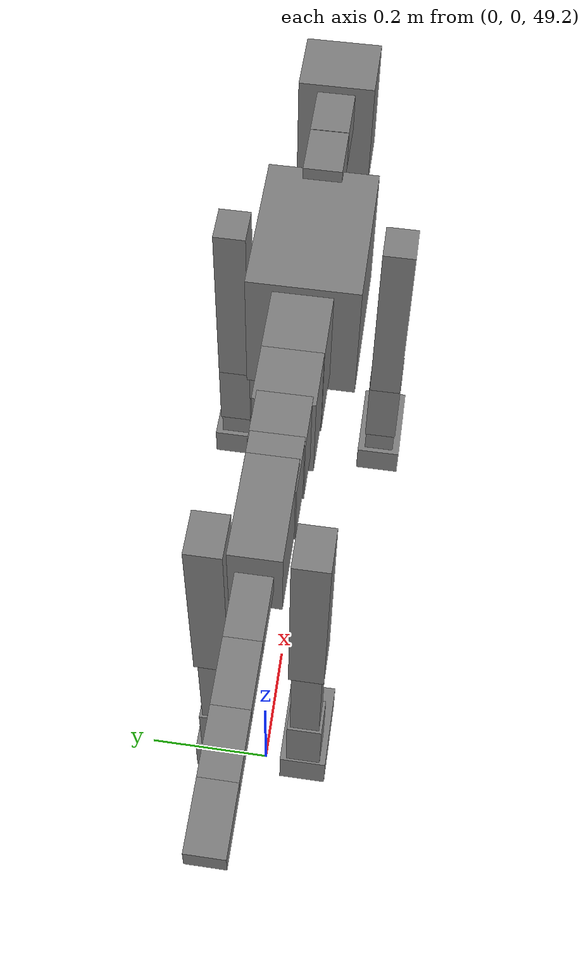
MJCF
<mujoco model="dog">

    <default>
        <joint armature="0.02" stiffness="1" damping="0.2" limited="true"/>
        <geom condim="3" friction="1 0.05 0.05" margin="0.01"/>
        <motor ctrllimited="true" ctrlrange="-1.0 1.0" forcelimited="true" gear="50"/>
    </default>

    <compiler inertiafromgeom="true" angle="radian"/>

    <option timestep="0.016" iterations="50" tolerance="1e-10" solver="Newton" jacobian="dense" cone="pyramidal"/>

    <size nconmax="20000" njmax="60000" nstack="5000000"/>
    <visual>
        <map force="0.1" zfar="30"/>
        <rgba haze="0.15 0.25 0.35 1"/>
        <quality shadowsize="2048"/>
        <global offwidth="800" offheight="800"/>
    </visual>

    <asset>
        <texture type="skybox" builtin="gradient" rgb1="0.3 0.5 0.7" rgb2="0 0 0" width="512" height="512"/>
        <texture name="texplane" type="2d" builtin="checker" rgb1=".2 .3 .4" rgb2=".1 0.15 0.2" width="512" height="512"
                 mark="cross" markrgb=".8 .8 .8"/>
        <texture name="texgeom" type="cube" builtin="flat" mark="cross" width="127" height="1278" rgb1="0.8 0.6 0.4"
                 rgb2="0.8 0.6 0.4" markrgb="1 1 1" random="0.01"/>

        <material name="matplane" reflectance="0.3" texture="texplane" texrepeat="1 1" texuniform="true"/>
        <material name="matgeom" texture="texgeom" texuniform="true" rgba="0.8 0.6 .4 1"/>
    </asset>

    <worldbody>
        <geom name="floor" pos="0 0 0" size="0 0 .25" type="plane" material="matplane" condim="3"/>

        <light directional="false" diffuse=".2 .2 .2" specular="0 0 0" pos="0 0 5" dir="0 0 -1" castshadow="false"/>
        <light mode="targetbodycom" target="torso" directional="false" diffuse=".8 .8 .8" specular="0.3 0.3 0.3"
               pos="0 0 4.0" dir="0 0 -1"/>

        <body name="root" pos="0 0 50">
            <freejoint name="root_1"/>
            <geom type="box" pos="0 0 -0.02" size="0.0774  0.0358  0.063" density="2030"/>

            <body name="spine1" pos="0.054 0 0">
                <joint name="spine1_y" axis="0 1 0" range="0 0.7" limited="true"/>
                <geom type="box" pos="0.02375 0 -0.03" size="0.04375  0.0375  0.05985" density="2030"/>

                <body name="spine2" pos="0.0612 0 0">
                    <joint name="spine2_y" axis="0 1 0" range="-0.15 0.15" limited="true"/>
                    <geom type="box" pos="0.03555  0  -0.04" size="0.04055  0.039  0.06615" density="2030"/>

                    <body name="spine3" pos="0.0730 0 0">
                        <joint name="spine3_y" axis="0 1 0" range="-0.15 0.15" limited="true"/>
                        <geom type="box" pos="0.03555  0  -0.057" size="0.04555  0.0445  0.081" density="2030"/>

                        <body name="spine4" pos="0.0780 0 0">
                            <joint name="spine4_y" axis="0 1 0" range="-0.15 0.15" limited="true"/>
                            <geom type="box" pos="0.05265  0  -0.07" size="0.05265  0.045  0.09135" density="2030"/>

                            <body name="torso" pos="0.1082 0 0">
                                <joint name="torso_y" axis="0 1 0" range="-0.15 0.15" limited="true"/>
                                <geom type="box" pos="0.11925  0  -0.085" size="0.11925  0.085  0.11745"
                                      density="2030"/>

                                <body name="neck1" pos="0.2160  0   0.0180">
                                    <joint name="neck1_y" axis="0 1 0" range="-1.2  -1" limited="true"/>
                                    <geom type="box" pos="0.0423  0  0" size="0.0423  0.03  0.036" density="2325"/>

                                    <body name="neck2" pos="0.0853  0  0">
                                        <joint name="neck2_y" axis="0 1 0" range="0.1  0" limited="true"/>
                                        <geom type="box" pos="0.0423  0  0" size="0.0423  0.03  0.036" density="2325"/>

                                        <body name="head" pos="0.0853  0  0">
                                            <joint name="head_y" axis="0 1 0" range="-0.3  -0.2" limited="true"/>
                                            <geom type="box" pos="0.0531  0  -0.055" size="0.0531  0.06  0.1044"
                                                  density="4030"/>

                                        </body>
                                    </body>
                                </body>

                                <body name="front_shoulder" pos="0.156  0   -0.0480">
                                    <joint name="front_shoulder_y" axis="0 1 0" range="-1 1.5" limited="true"/>
                                    <geom type="box" pos="0 0.13 -0.1439" size="0.0298  0.0255  0.1705" density="1158"/>
                                    <geom type="box" pos="0 -0.13 -0.1439" size="0.0298  0.0255  0.1705"
                                          density="1158"/>

                                    <body name="front_elbow" pos="0  0  -0.2877">
                                        <joint name="front_elbow_y" axis="0 1 0" range="-2 0" limited="true"/>
                                        <geom type="box" pos="0 0.13 -0.0823" size="0.0258  0.0264  0.0823"
                                              density="1081"/>
                                        <geom type="box" pos="0 -0.13 -0.0823" size="0.0258  0.0264  0.0823"
                                              density="1081"/>

                                        <body name="front_wrist" pos="0  0  -0.1646">
                                            <joint name="front_wrist_y" axis="0 1 0" range="-0.2 0" limited="true"/>
                                            <geom type="box" pos="0 0.13 -0.0306" size="0.0224  0.0249  0.0437"
                                                  density="1664"/>
                                            <geom type="box" pos="0 -0.13 -0.0306" size="0.0224  0.0249  0.0437"
                                                  density="1664"/>

                                            <body name="front_finger_end" pos="0  0  -0.0611">
                                                <joint name="front_finger_y" axis="0 1 0" range="-0.4 1"
                                                       limited="true"/>
                                                <geom type="box" pos="0.0368  0.13  -0.0128"
                                                      size="0.0675  0.0368  0.0278" density="1515"/>
                                                <geom type="box" pos="0.0368  -0.13  -0.0128"
                                                      size="0.0675  0.0368  0.0278" density="1515"/>

                                            </body>

                                        </body>
                                    </body>
                                </body>

                            </body>
                        </body>
                    </body>
                </body>
            </body>

            <body name="back_hip" pos="-0.03 0 -0.018">
                <joint name="back_hip_y" axis="0 1 0" range="-1.5 0.3" limited="true"/>
                <geom type="box" pos="0 0.07 -0.1435" size="0.0334  0.0262  0.1663" density="1154"/>
                <geom type="box" pos="0 -0.07 -0.1435" size="0.0334  0.0262  0.1663" density="1154"/>

                <body name="back_knee" pos="0  0  -0.2870">
                    <joint name="back_knee_y" axis="0 1 0" range="0 2.8" limited="true"/>
                    <geom type="box" pos="0 0.07 -0.1156" size="0.0233  0.0230  0.1312" density="1227"/>
                    <geom type="box" pos="0 -0.07 -0.1156" size="0.0233  0.0230  0.1312" density="1227"/>

                    <body name="back_ankle" pos="0  0  -0.2312">
                        <joint name="back_ankle_y" axis="0 1 0" range="-2.2 0" limited="true"/>
                        <geom type="box" pos="0 0.07 -0.0620" size="0.0276  0.0276  0.0732" density="1284"/>
                        <geom type="box" pos="0 -0.07 -0.0620" size="0.0276  0.0276  0.0732" density="1284"/>

                        <body name="back_toe_end" pos="0  0  -0.1239">
                            <joint name="back_toe_y" axis="0 1 0" range="-0.4 1" limited="true"/>
                            <geom type="box" pos="0.0374  0.07  -0.0217" size="0.0685  0.0374  0.0367" density="1515"/>
                            <geom type="box" pos="0.0374  -0.07  -0.0217" size="0.0685  0.0374  0.0367" density="1515"/>

                        </body>
                    </body>
                </body>
            </body>

            <body name="tail1" pos="-0.074 0 -0.006">
                <joint name="tail1_y" axis="0 1 0" range="-0.2 0.2" limited="true"/>
                <geom type="box" pos="-0.0536  0  0" size="0.045  0.025  0.0175" density="1587"/>

                <body name="tail2" pos="-0.09 0 0">
                    <joint name="tail2_y" axis="0 1 0" range="-0.2 0.2" limited="true"/>
                    <geom type="box" pos="-0.0536  0  0" size="0.045  0.025  0.0175" density="1587"/>

                    <body name="tail3" pos="-0.09 0 0">
                        <joint name="tail3_y" axis="0 1 0" range="-0.2 0.2" limited="true"/>
                        <geom type="box" pos="-0.0536  0  0" size="0.045  0.025  0.0175" density="1587"/>

                        <body name="tail4" pos="-0.09 0 0">
                            <joint name="tail4_y" axis="0 1 0" range="-0.2 0.2" limited="true"/>
                            <geom type="box" pos="-0.0536  0  0" size="0.045  0.025  0.0175" density="1587"/>

                        </body>
                    </body>
                </body>
            </body>
        </body>
    </worldbody>

    <actuator>
        <motor joint="spine1_y" forcerange="-150 150     "/>
        <motor joint="spine2_y" forcerange="-150 150     "/>
        <motor joint="spine3_y" forcerange="-150 150     "/>
        <motor joint="spine4_y" forcerange="-150 150     "/>
        <motor joint="torso_y" forcerange="-150 150     "/>
        <motor joint="neck1_y" forcerange="-100 100       "/>
        <motor joint="neck2_y" forcerange="-100 100       "/>
        <motor joint="head_y" forcerange="-150 150       "/>
        <motor joint="front_shoulder_y" forcerange="-105.20 164.73"/>
        <motor joint="front_elbow_y" forcerange="-126.21 165.65"/>
        <motor joint="front_wrist_y" forcerange="-51.77 147.15"/>
        <motor joint="front_finger_y" forcerange="-65.91 90.44"/>
        <motor joint="back_hip_y" forcerange="-225.19 324.04"/>
        <motor joint="back_knee_y" forcerange="-273.57 260.66"/>
        <motor joint="back_angle_y" forcerange="-95.67 245.30"/>
        <motor joint="back_toe_y" forcerange="-120.00 99.06"/>
        <motor joint="tail1_y" forcerange="-50 50     "/>
        <motor joint="tail2_y" forcerange="-50 50     "/>
        <motor joint="tail3_y" forcerange="-50 50     "/>
        <motor joint="tail4_y" forcerange="-50 50     "/>
    </actuator>
</mujoco>
